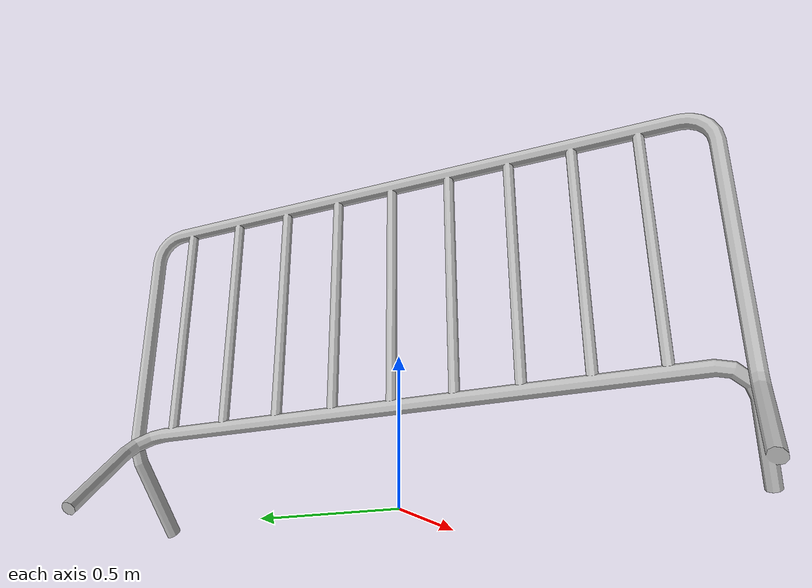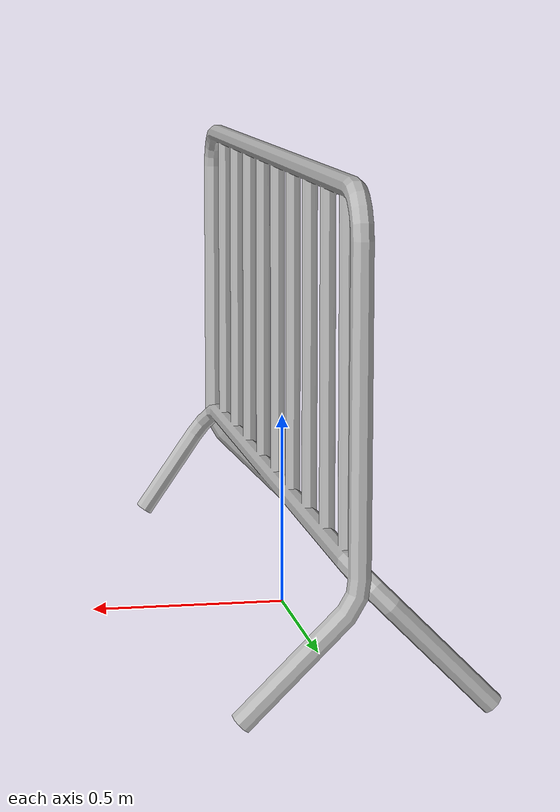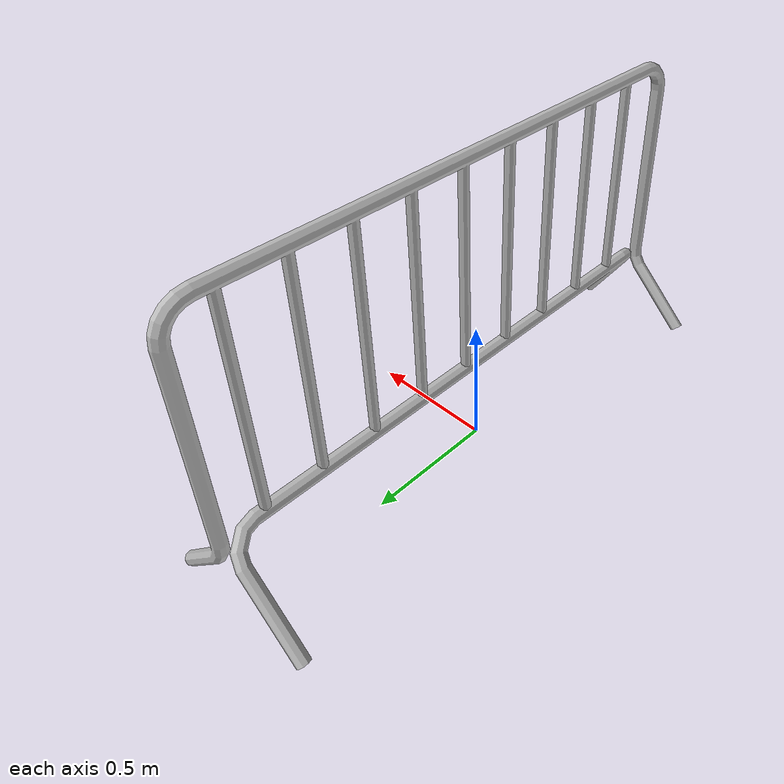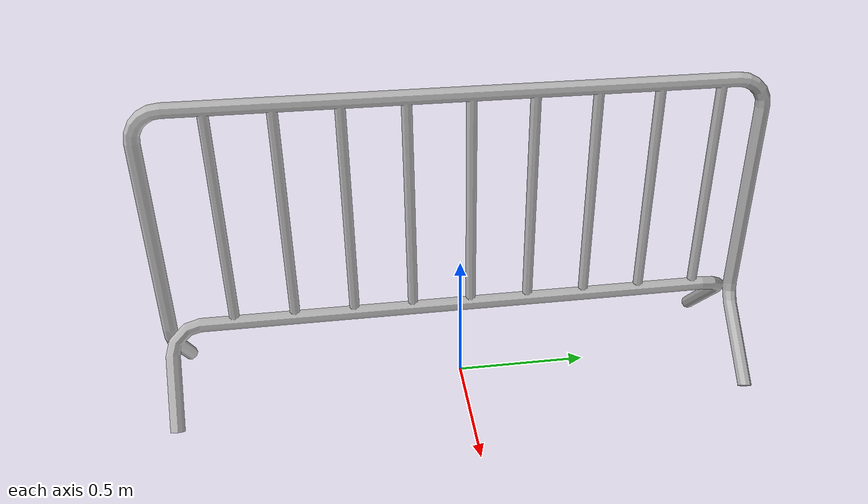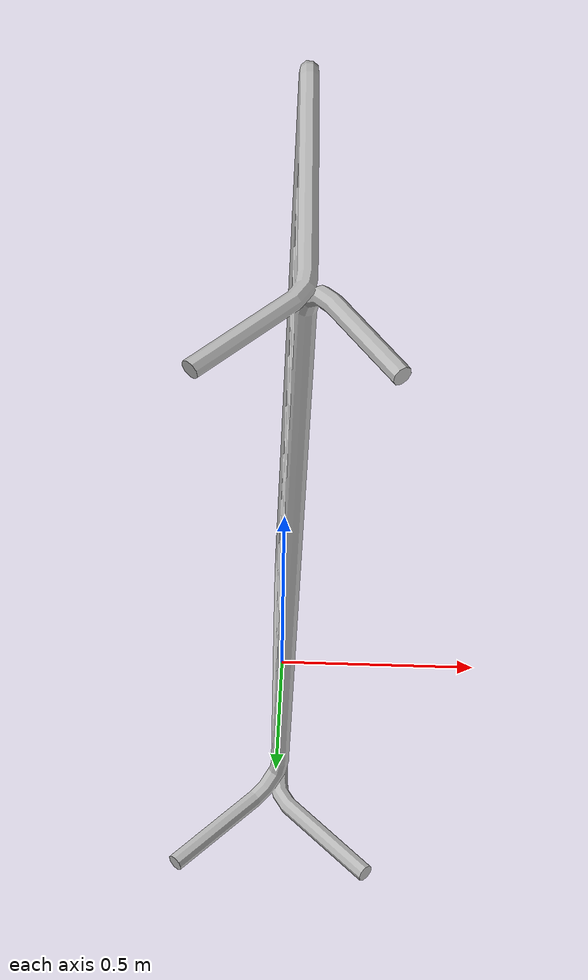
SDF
<?xml version='1.0'?>
<sdf version='1.6'>
  <model name='aws_Fence_02'>
    <link name='body'>
      <pose frame=''>0 0 0 0 -0 0</pose>
      <self_collide>0</self_collide>
      <kinematic>0</kinematic>
      <gravity>1</gravity>
      <inertial>
        <mass>5</mass>
        <pose frame=''>0 0 0 0 -0 0</pose>
        <inertia>
          <ixx>9.6</ixx>
          <ixy>0</ixy>
          <ixz>0</ixz>
          <iyy>8.2</iyy>
          <iyz>0</iyz>
          <izz>2.1</izz>
        </inertia>
      </inertial>
      <visual name='visual'>
        <geometry>
          <mesh>
            <uri>file://models/aws_robomaker_racetrack_Fence_02/meshes/aws_Fence_02_visual.obj</uri>
            <scale>0.01 0.01 0.01</scale>
          </mesh>
        </geometry>
        <material>
          <shader type='pixel'>
            <normal_map>__default__</normal_map>
          </shader>
        </material>
        <pose frame=''>0 0 0 0 -0 0</pose>
        <cast_shadows>1</cast_shadows>
        <transparency>0</transparency>
        <meta>
          <layer>0</layer>
        </meta>
      </visual>
      <collision name='collision_0'>
        <laser_retro>0</laser_retro>
        <max_contacts>10</max_contacts>
        <pose frame=''>0 0 0 0 -0 0</pose>
        <geometry>
          <mesh>
            <uri>file://models/aws_robomaker_racetrack_Fence_02/meshes/aws_Fence_02_collision.obj</uri>
            <scale>0.01 0.01 0.01</scale>
          </mesh>
        </geometry>
        <surface>
          <friction>
            <ode>
              <mu>1</mu>
              <mu2>1</mu2>
              <fdir1>0 0 0</fdir1>
              <slip1>0</slip1>
              <slip2>0</slip2>
            </ode>
            <torsional>
              <coefficient>1</coefficient>
              <patch_radius>0</patch_radius>
              <surface_radius>0</surface_radius>
              <use_patch_radius>1</use_patch_radius>
              <ode>
                <slip>0</slip>
              </ode>
            </torsional>
          </friction>
          <bounce>
            <restitution_coefficient>0</restitution_coefficient>
            <threshold>1e+06</threshold>
          </bounce>
          <contact>
            <collide_without_contact>0</collide_without_contact>
            <collide_without_contact_bitmask>1</collide_without_contact_bitmask>
            <collide_bitmask>1</collide_bitmask>
          </contact>
        </surface>
      </collision>
    </link>
    <static>true</static>
  </model>
</sdf>
